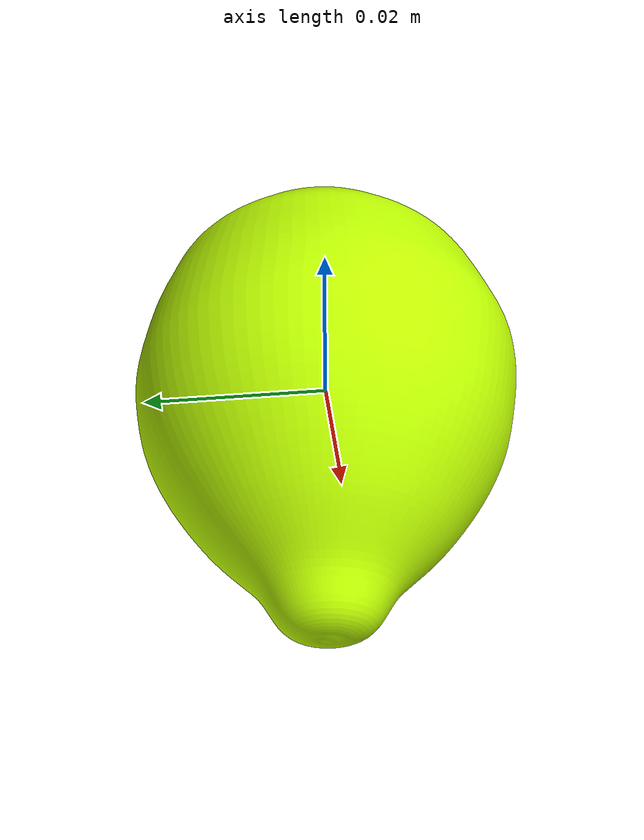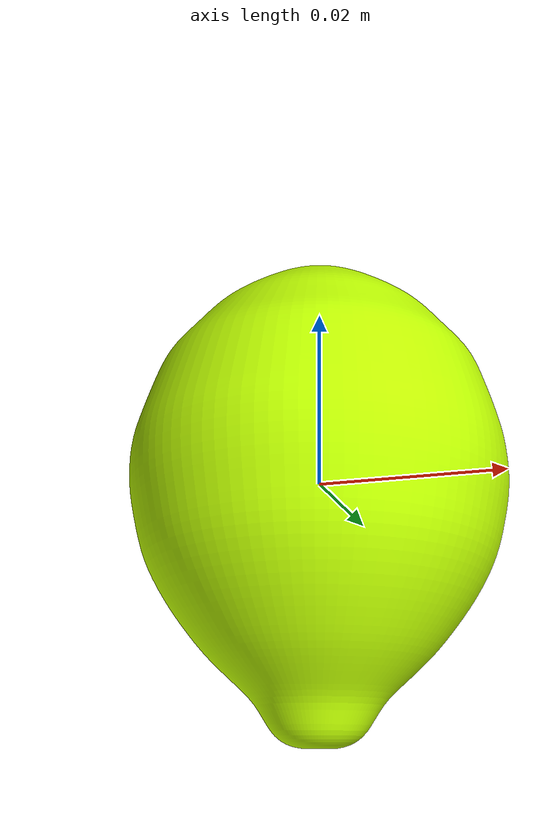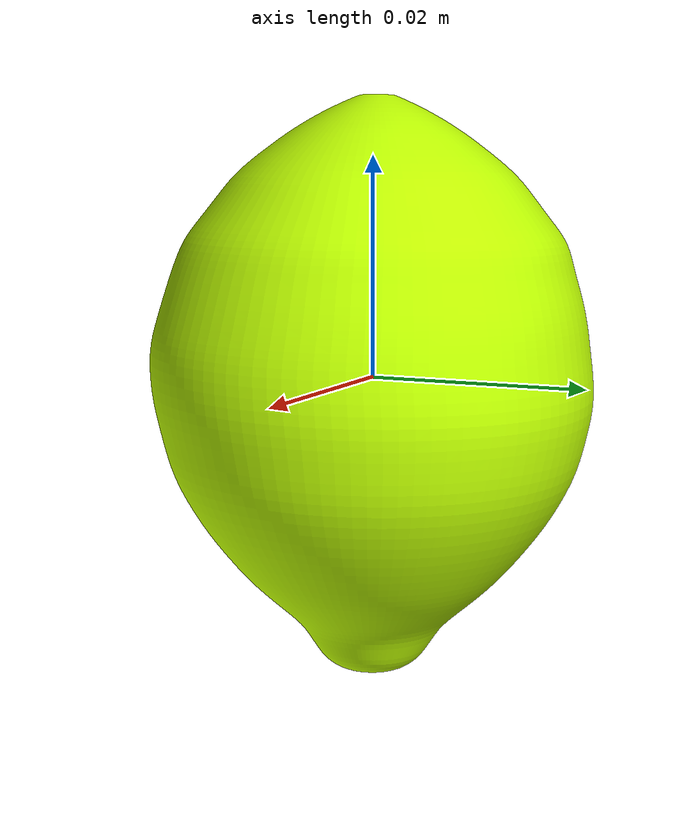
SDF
<sdf version="1.7">
  <model name="Lime">
    <link name="base_link">
      <inertial>
        <mass>0.045</mass>
        <inertia>
          <ixx>1.641e-05</ixx>
          <ixy>0.000e+00</ixy>
          <ixz>0.000e+00</ixz>
          <iyy>1.638e-05</iyy>
          <iyz>0.000e+00</iyz>
          <izz>1.201e-05</izz>
        </inertia>
      </inertial>
      <visual name="Lime_visual">
        <geometry>
          <mesh>
            <scale>1 1 1</scale>
            <uri>Lime_processed_simple_vis.obj</uri>
          </mesh>
        </geometry>
        <material>
          <diffuse>0.75 1.0 0.0 1.0</diffuse>
        </material>
      </visual>
      <collision name="collision_0000">
        <geometry>
          <mesh>
            <uri>Lime_processed_parts/Lime_processed_convex_piece_000.obj</uri>
            <drake:declare_convex xmlns:drake="drake.mit.edu"/>
          </mesh>
        </geometry>
        <surface>
          <friction>
            <ode>
              <mu>5</mu>
              <mu2>5</mu2>
            </ode>
          </friction>
        </surface>
      </collision>
    </link>
  </model>
</sdf>
